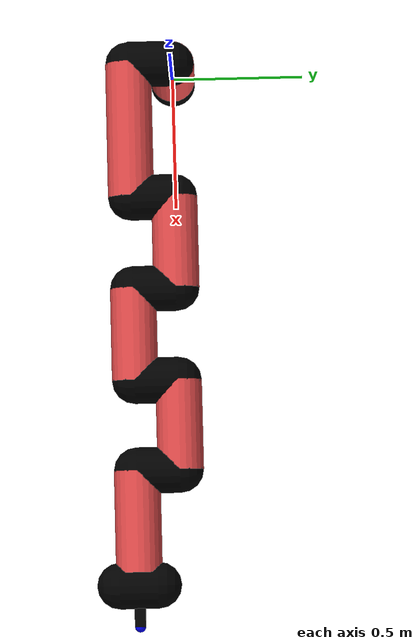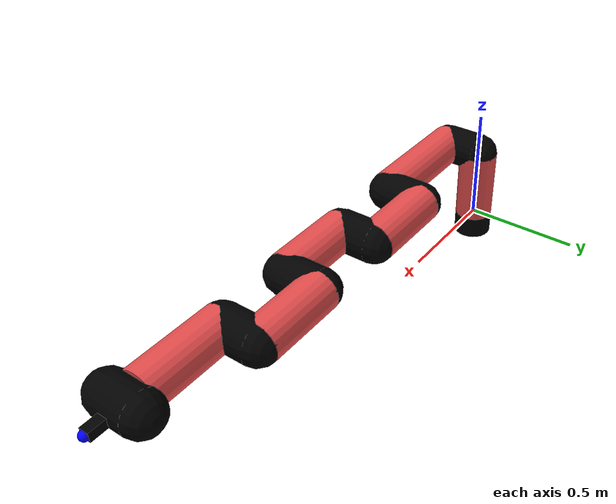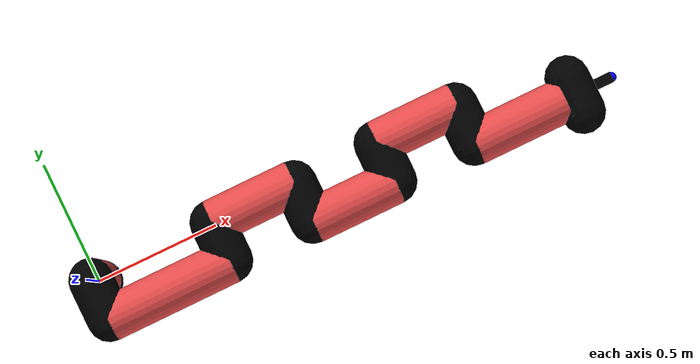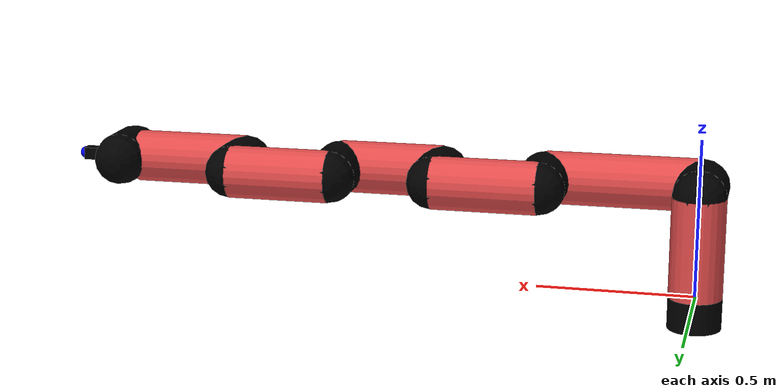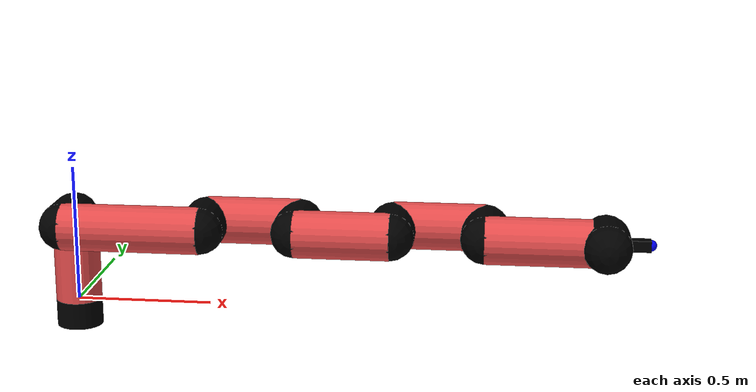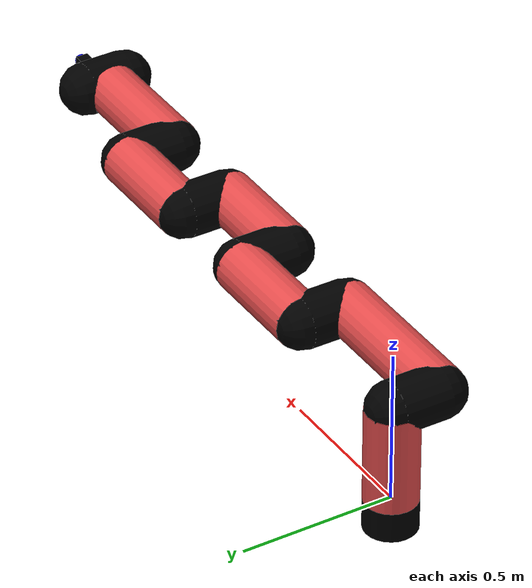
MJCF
<mujoco model="manipulator">
		<compiler angle="degree" coordinate="local" inertiafromgeom="auto" meshdir="meshes/"/>
		<option gravity="0 0 0" integrator="RK4" iterations="30" timestep="0.01"/>

		<default>
		<joint armature="1" limited="true" stiffness="10" damping="15" frictionloss="5.0"/>
		<geom conaffinity="1" condim="3" contype="1" friction=".5 .1 .1" margin="0.002"/>
		<motor ctrllimited="true"/>
		<position ctrllimited="true"/>
		</default>

		<asset>
		<texture builtin="gradient" height="100" rgb1="1.0 1.0 1.0" rgb2="1.0 1.0 1.0" type="skybox" width="100"/>
		<texture builtin="flat" height="32" name="arm_tex" rgb1="0.9 0.3 0.3" type="2d" width="32"/>
		<texture builtin="flat" height="32" name="gripper_tex" rgb1="0.0 0.0 0.0" type="cube" width="32"/>

		<material name="arm_mat" shininess="0.1" specular="0.1" texture="arm_tex"/>
		<material name="gripper_mat" shininess="1" specular="1" texture="gripper_tex"/>
		</asset>

		<worldbody>
		<light cutoff="45" diffuse=".8 .8 .8" dir="0 0.16 -1" directional="false" name="light" pos="0 -2.0 8.0" specular="0.3 0.3 0.3"/>

		<body name="base_link" pos="0 0 -0.1">
		<geom fromto="0 0 0 0 0 0.1" material="arm_mat" name="base_link" rgba="0.0 0.0 0.0 1" size="0.085" type="cylinder"/>
		</body>

		<body name="l1" pos="0 0 0">
<geom fromto="0 0 0 0 0 0.32" material="arm_mat" name="l1" rgba="0.9 0.3 0.3 1" size="0.085" type="cylinder"/>
<geom fromto="0 0 0.32 0 -0.16 0.32" material="arm_mat" name="l1_ex" rgba="0.0 0.0 0.0 1" size="0.085" type="capsule"/>
<joint axis="0 0 1" name="j1" pos="0 0 0" range="-90 90" damping="35.17" frictionloss="12.17"/>

<body name="l2" pos="0 -0.16 0.32">
<geom fromto="0 0 0 0.5 0 0" material="arm_mat" name="l2" rgba="0.9 0.3 0.3 1" size="0.085" type="cylinder"/>
<geom fromto="0.5 0 0 0.5 0.16 0" material="arm_mat" name="l2_ex" rgba="0.0 0.0 0.0 1" size="0.085" type="capsule"/>
<joint axis="0.0 1.0 0.0" name="j2" pos="0 0 0" range="-90 60" damping="29.37" frictionloss="7.77"/>

<body name="l3" pos="0.5 0.16 0">
<geom fromto="0 0 0 0.34 0 0" material="arm_mat" name="l3" rgba="0.9 0.3 0.3 1" size="0.085" type="cylinder"/>
<geom fromto="0.34 0 0 0.34 -0.16 0" material="arm_mat" name="l3_ex" rgba="0.0 0.0 0.0 1" size="0.085" type="capsule"/>
<joint axis="0.0 1.0 0.0" name="j3" pos="0 0 0" range="-30 60" damping="36.29" frictionloss="8.56"/>

<body name="l4" pos="0.34 -0.16 0">
<geom fromto="0 0 0 0.34 0 0" material="arm_mat" name="l4" rgba="0.9 0.3 0.3 1" size="0.085" type="cylinder"/>
<geom fromto="0.34 0 0 0.34 0.16 0" material="arm_mat" name="l4_ex" rgba="0.0 0.0 0.0 1" size="0.085" type="capsule"/>
<joint axis="0.0 1.0 0.0" name="j4" pos="0 0 0" range="-30 60" damping="25.5" frictionloss="8.89"/>

<body name="l5" pos="0.34 0.16 0">
<geom fromto="0 0 0 0.33 0 0" material="arm_mat" name="l5" rgba="0.9 0.3 0.3 1" size="0.085" type="cylinder"/>
<geom fromto="0.33 0 0 0.33 -0.16 0" material="arm_mat" name="l5_ex" rgba="0.0 0.0 0.0 1" size="0.085" type="capsule"/>
<joint axis="0.0 1.0 0.0" name="j5" pos="0 0 0" range="-30 60" damping="35.22" frictionloss="8.96"/>

<body name="l6" pos="0.33 -0.16 0">
<geom fromto="0 0 0 0.37 0 0" material="arm_mat" name="l6" rgba="0.9 0.3 0.3 1" size="0.085" type="cylinder"/>
<joint axis="0.0 1.0 0.0" name="j6" pos="0 0 0" range="-30 60" damping="36.77" frictionloss="11.63"/>

<body name="gripper" pos="0.37 0 0">
<geom fromto="0.05 -0.07 0 0.05 0.07 0" material="gripper_mat" name="gripper" rgba="0.0 0.0 0.0 1" size="0.085" type="capsule"/><joint axis="1 0 0" name="j7" pos="0 0 0" range="-90 90" damping="15" frictionloss="5.0"/><body name="finger" pos="0.1 0 0">
<geom fromto="0 0.0 0 0.1 0.0 0" material="gripper_mat" name="finger" rgba="0.0 0.0 0.0 1" size="0.020 0.06 0.06" type="box"/>
</body>
<site name="current" pos="0.2 0. 0.0" rgba="0. 0. 1.0 1" size="0.02" type="sphere"/>
</body>
</body>
</body>
</body>
</body>
</body>
</body>
</worldbody>
<actuator>
<motor ctrllimited="true" ctrlrange="-1.0 1.0" joint="j1" gear="76.35"/>
<motor ctrllimited="true" ctrlrange="-1.0 1.0" joint="j2" gear="82.28"/>
<motor ctrllimited="true" ctrlrange="-1.0 1.0" joint="j3" gear="82.29"/>
<motor ctrllimited="true" ctrlrange="-1.0 1.0" joint="j4" gear="76.69"/>
<motor ctrllimited="true" ctrlrange="-1.0 1.0" joint="j5" gear="84.2"/>
<motor ctrllimited="true" ctrlrange="-1.0 1.0" joint="j6" gear="76.52"/>
<motor ctrllimited="true" ctrlrange="-1.0 1.0" joint="j7" gear="80"/>
</actuator>
</mujoco>
